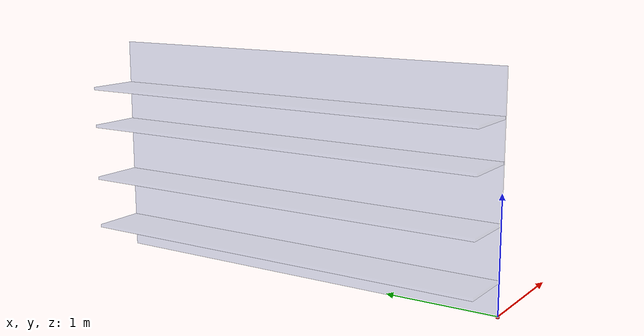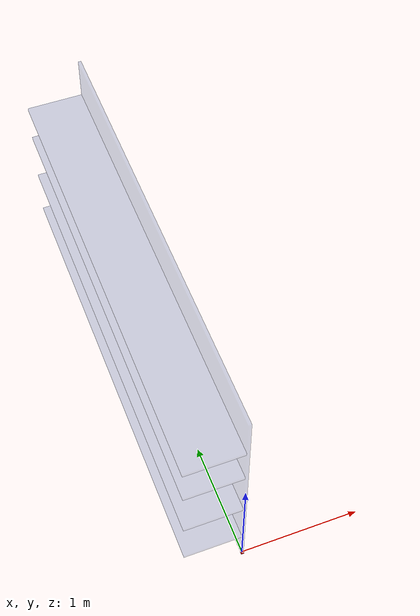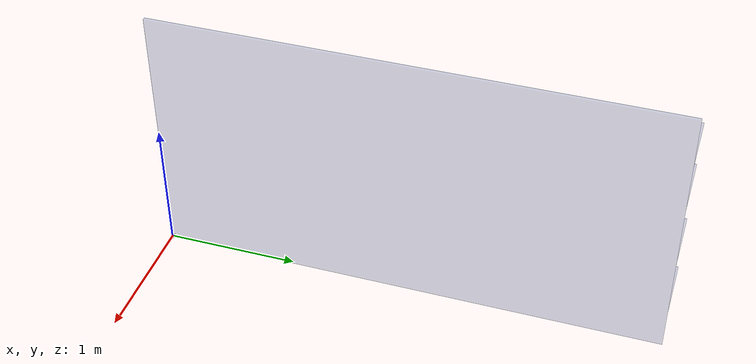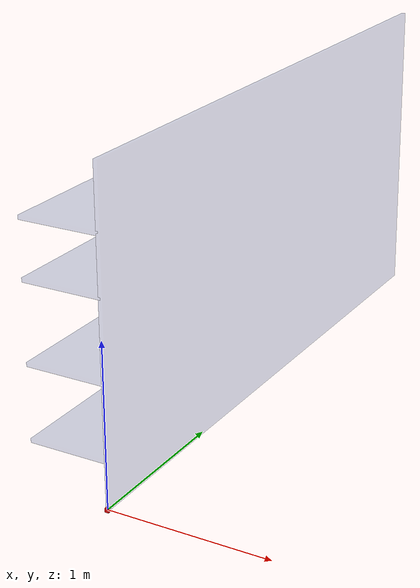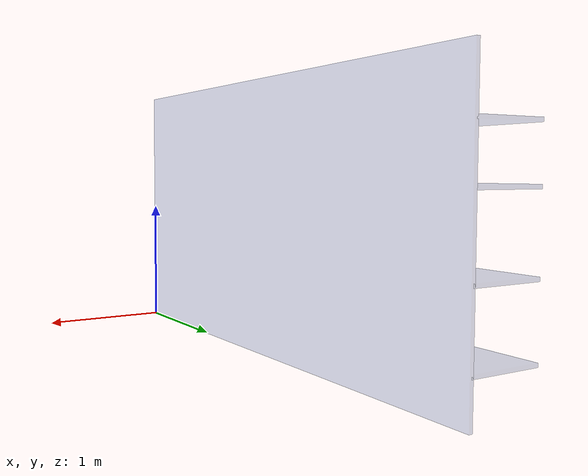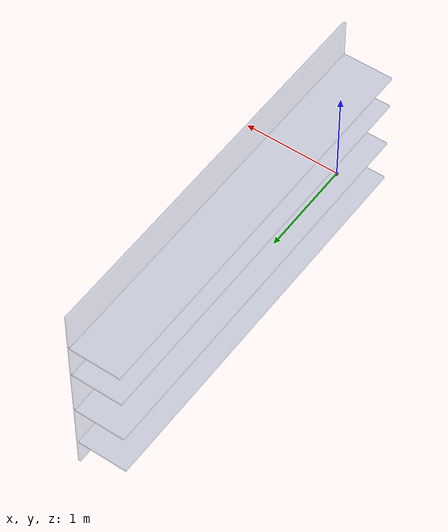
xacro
<?xml version="1.0" ?>
<robot xmlns:xacro="http://www.ros.org/wiki/xacro" name="environment">

<property name="M_PI" value="3.14159"/>
<property name="SCALE" value="0.0254"/>
<property name="base_x" value="0.55" />
<property name="base_y" value="0.55" />
<property name="base_radius_visual" value="0.2025" />
<property name="base_radius_collision" value="0.25" />  <!-- used to be 0.35 -->

<material name="Green">
      <color rgba="0.0 0.8 0.0 1.0"/>
</material>
<material name="Red">
      <color rgba="0.8 0.0 0.0 1.0"/>
</material>
<material name="White">
      <color rgba="1.0 1.0 1.0 1.0"/>
</material>
<material name="Blue">
      <color rgba="0.0 0.0 0.8 1.0"/>
</material>
<material name="Black">
      <color rgba="0.0 0.0 0.0 1.0"/>
</material>
<material name="Grey">
      <color rgba="0.25 0.25 0.25 1.0"/>
</material>
<material name="Silver">
      <color rgba="0.38 0.38 0.38 1.0"/>
</material>
<material name="Sandal">
      <color rgba="0.84 0.87 0.50 1.0"/>
</material>
<material name="LBlue">
      <color rgba="0.18 0.30 0.58 0.25"/>
</material>
<material name="Yellow">
      <color rgba="1 1 0 1.0"/>
</material>

<link name="map">
</link>

<joint name="env_global_frame_odom" type="fixed">
    <origin xyz="0 0 0" rpy="0 0 3.1415926" />
    <parent link="map" />
    <child link="env_global_frame" />
</joint>

<link name="env_global_frame">
    <inertial>
        <mass value="0.00001" />
        <origin xyz="0.0 0.0 0.0" />
        <inertia ixx="1.0" ixy="0.0" ixz="0.0"
                    iyy="1.0" iyz="0.0"
                    izz="1.0" />
    </inertial>

    <visual>
        <material name="Red" />
        <!--origin xyz=" 0 0 0 " rpy="0 0 0" /-->
        <geometry>
            <box size="0.025 0.025 0.025" />
        </geometry>
    </visual>
</link>
<joint name="rack0framejoin_env_global_frame" type="fixed">
    <origin xyz="0.0 -1.9 0.9906" rpy="0 0 0" />
    <parent link="env_global_frame" />
    <child link="rack0frame" />
</joint>

<link name="rack0frame">
    <inertial>
        <mass value="0.00001" />
        <origin xyz="0 0 0" />
        <inertia ixx="1.0" ixy="0.0" ixz="0.0"
                    iyy="1.0" iyz="0.0"
                    izz="1.0" />
    </inertial>

    <visual>
        <material name="LBlue" />
        <!--origin xyz=" 0 0 0 " rpy="0 0 0" /-->
        <geometry>
            <box size="0.0254 3.8 1.9812" />
        </geometry>
    </visual>
</link>

<joint name="level1rack0framejoin_rack0frame" type="fixed">
    <origin xyz="0.24765 0.0 0.60" rpy="0 0 0" />
    <parent link="rack0frame" />
    <child link="level1rack0frame" />
</joint>

<link name="level1rack0frame">
    <inertial>
        <mass value="0.00001" />
        <origin xyz="0 0 0" />
        <inertia ixx="1.0" ixy="0.0" ixz="0.0"
                    iyy="1.0" iyz="0.0"
                    izz="1.0" />
    </inertial>

    <visual>
        <material name="LBlue" />
        <!--origin xyz=" 0 0 0 " rpy="0 0 0" /-->
        <geometry>
            <box size="0.4953 3.8 0.0254" />
        </geometry>
    </visual>
</link>

<joint name="level2rack0framejoin_rack0frame" type="fixed">
    <origin xyz="0.24765 0.0 0.25" rpy="0 0 0" />
    <parent link="rack0frame" />
    <child link="level2rack0frame" />
</joint>

<link name="level2rack0frame">
    <inertial>
        <mass value="0.00001" />
        <origin xyz="0 0 0" />
        <inertia ixx="1.0" ixy="0.0" ixz="0.0"
                    iyy="1.0" iyz="0.0"
                    izz="1.0" />
    </inertial>

    <visual>
        <material name="LBlue" />
        <!--origin xyz=" 0 0 0 " rpy="0 0 0" /-->
        <geometry>
            <box size="0.4953 3.8 0.0254" />
        </geometry>
    </visual>
</link>
<joint name="level3rack0framejoin_rack0frame" type="fixed">
    <origin xyz="0.24765 0.0 -0.24" rpy="0 0 0" />
    <parent link="rack0frame" />
    <child link="level3rack0frame" />
</joint>

<link name="level3rack0frame">
    <inertial>
        <mass value="0.00001" />
        <origin xyz="0 0 0" />
        <inertia ixx="1.0" ixy="0.0" ixz="0.0"
                    iyy="1.0" iyz="0.0"
                    izz="1.0" />
    </inertial>

    <visual>
        <material name="LBlue" />
        <!--origin xyz=" 0 0 0 " rpy="0 0 0" /-->
        <geometry>
            <box size="0.4953 3.8 0.0254" />
        </geometry>
    </visual>
</link>

<joint name="level4rack0framejoin_rack0frame" type="fixed">
    <origin xyz="0.24765 0.0 -0.7" rpy="0 0 0" />
    <parent link="rack0frame" />
    <child link="level4rack0frame" />
</joint>
<link name="level4rack0frame">
    <inertial>
        <mass value="0.00001" />
        <origin xyz="0 0 0" />
        <inertia ixx="1.0" ixy="0.0" ixz="0.0"
                    iyy="1.0" iyz="0.0"
                    izz="1.0" />
    </inertial>

    <visual>
        <material name="LBlue" />
        <!--origin xyz=" 0 0 0 " rpy="0 0 0" /-->
        <geometry>
            <box size="0.4953 3.8 0.0254" />
        </geometry>
    </visual>
</link>

</robot>
